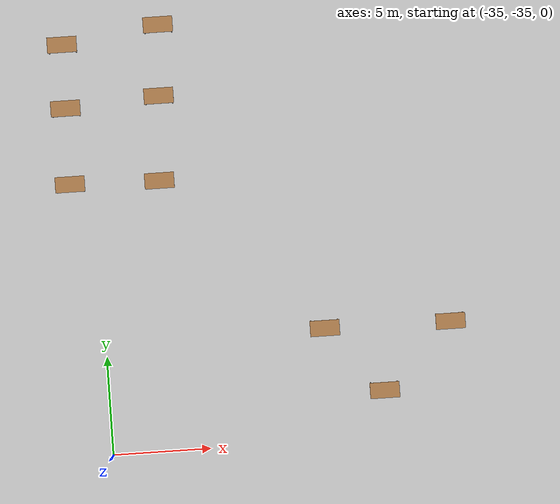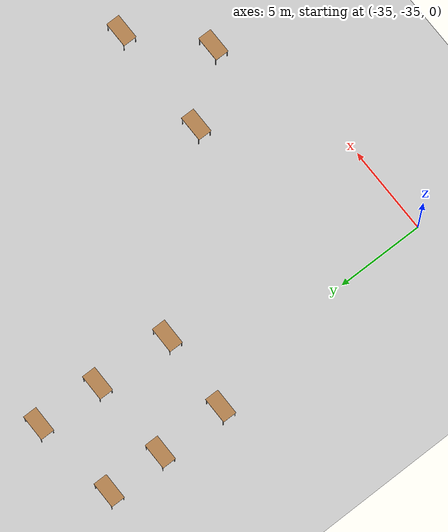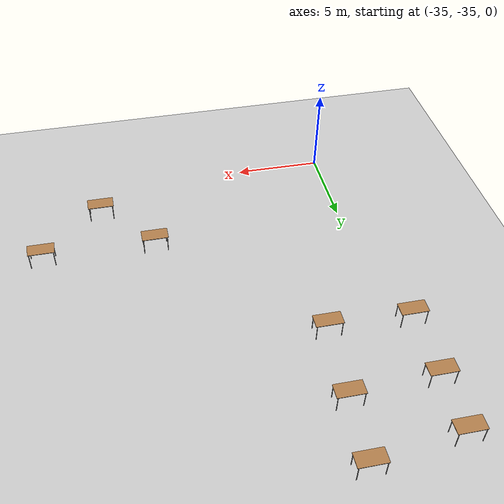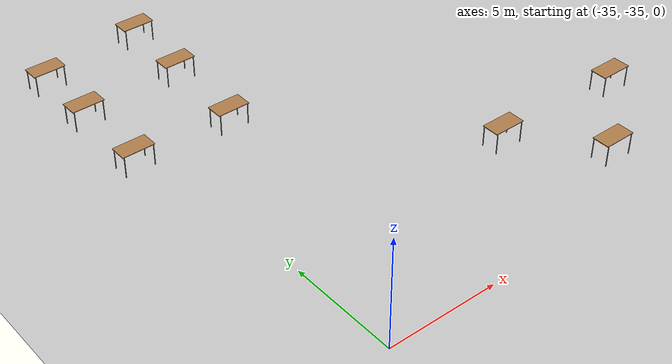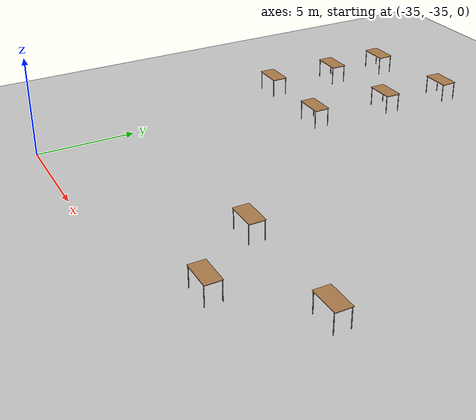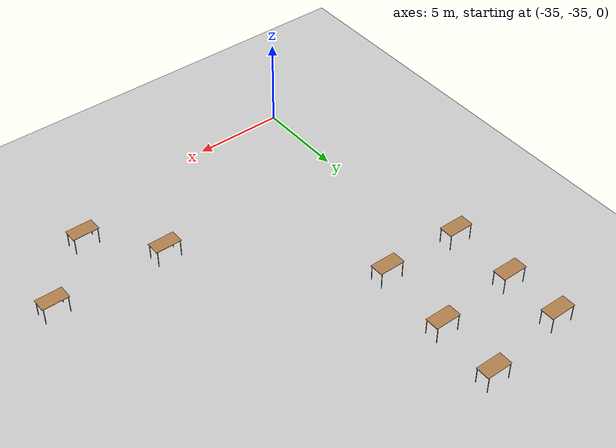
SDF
<sdf version="1.6">
 <world name="default">
  <model name="ground_plane">
   <static>1</static>
   <link name="link">
    <collision name="collision">
     <geometry><plane><normal>0 0 1</normal><size>100 100</size></plane></geometry>
     <surface>
      <contact><collide_bitmask>65535</collide_bitmask></contact>
      <friction><ode><mu>100</mu><mu2>50</mu2></ode></friction>
     </surface>
    </collision>
    <visual name="visual">
     <cast_shadows>0</cast_shadows>
     <geometry><plane><normal>0 0 1</normal><size>100 100</size></plane></geometry>
     <material>
      <script><uri>file://media/materials/scripts/gazebo.material</uri><name>Gazebo/Grey</name></script>
     </material>
    </visual>
   </link>
  </model>
  <model name="table">
   <static>1</static>
   <link name="link">
    <collision name="surface">
     <pose>0 0 1 0 -0 0</pose>
     <geometry><box><size>1.5 0.8 0.03</size></box></geometry>
     <surface><friction><ode><mu>0.6</mu><mu2>0.6</mu2></ode></friction></surface>
    </collision>
    <visual name="visual1">
     <pose>0 0 1 0 -0 0</pose>
     <geometry><box><size>1.5 0.8 0.03</size></box></geometry>
     <material>
      <script><uri>file://media/materials/scripts/gazebo.material</uri><name>Gazebo/Wood</name></script>
     </material>
    </visual>
    <collision name="front_left_leg">
     <pose>0.68 0.38 0.5 0 -0 0</pose>
     <geometry><cylinder><radius>0.02</radius><length>1</length></cylinder></geometry>
    </collision>
    <visual name="front_left_leg">
     <pose>0.68 0.38 0.5 0 -0 0</pose>
     <geometry><cylinder><radius>0.02</radius><length>1</length></cylinder></geometry>
     <material>
      <script><uri>file://media/materials/scripts/gazebo.material</uri><name>Gazebo/Grey</name></script>
     </material>
    </visual>
    <collision name="front_right_leg">
     <pose>0.68 -0.38 0.5 0 -0 0</pose>
     <geometry><cylinder><radius>0.02</radius><length>1</length></cylinder></geometry>
    </collision>
    <visual name="front_right_leg">
     <pose>0.68 -0.38 0.5 0 -0 0</pose>
     <geometry><cylinder><radius>0.02</radius><length>1</length></cylinder></geometry>
     <material>
      <script><uri>file://media/materials/scripts/gazebo.material</uri><name>Gazebo/Grey</name></script>
     </material>
    </visual>
    <collision name="back_right_leg">
     <pose>-0.68 -0.38 0.5 0 -0 0</pose>
     <geometry><cylinder><radius>0.02</radius><length>1</length></cylinder></geometry>
    </collision>
    <visual name="back_right_leg">
     <pose>-0.68 -0.38 0.5 0 -0 0</pose>
     <geometry><cylinder><radius>0.02</radius><length>1</length></cylinder></geometry>
     <material>
      <script><uri>file://media/materials/scripts/gazebo.material</uri><name>Gazebo/Grey</name></script>
     </material>
    </visual>
    <collision name="back_left_leg">
     <pose>-0.68 0.38 0.5 0 -0 0</pose>
     <geometry><cylinder><radius>0.02</radius><length>1</length></cylinder></geometry>
    </collision>
    <visual name="back_left_leg">
     <pose>-0.68 0.38 0.5 0 -0 0</pose>
     <geometry><cylinder><radius>0.02</radius><length>1</length></cylinder></geometry>
     <material>
      <script><uri>file://media/materials/scripts/gazebo.material</uri><name>Gazebo/Grey</name></script>
     </material>
    </visual>
   </link>
   <pose>-36.1983 -13.9942 0 0 -0 0</pose>
  </model>
  <model name="table_0">
   <static>1</static>
   <link name="link">
    <collision name="surface">
     <pose>0 0 1 0 -0 0</pose>
     <geometry><box><size>1.5 0.8 0.03</size></box></geometry>
     <surface><friction><ode><mu>0.6</mu><mu2>0.6</mu2></ode></friction></surface>
    </collision>
    <visual name="visual1">
     <pose>0 0 1 0 -0 0</pose>
     <geometry><box><size>1.5 0.8 0.03</size></box></geometry>
     <material>
      <script><uri>file://media/materials/scripts/gazebo.material</uri><name>Gazebo/Wood</name></script>
     </material>
    </visual>
    <collision name="front_left_leg">
     <pose>0.68 0.38 0.5 0 -0 0</pose>
     <geometry><cylinder><radius>0.02</radius><length>1</length></cylinder></geometry>
    </collision>
    <visual name="front_left_leg">
     <pose>0.68 0.38 0.5 0 -0 0</pose>
     <geometry><cylinder><radius>0.02</radius><length>1</length></cylinder></geometry>
     <material>
      <script><uri>file://media/materials/scripts/gazebo.material</uri><name>Gazebo/Grey</name></script>
     </material>
    </visual>
    <collision name="front_right_leg">
     <pose>0.68 -0.38 0.5 0 -0 0</pose>
     <geometry><cylinder><radius>0.02</radius><length>1</length></cylinder></geometry>
    </collision>
    <visual name="front_right_leg">
     <pose>0.68 -0.38 0.5 0 -0 0</pose>
     <geometry><cylinder><radius>0.02</radius><length>1</length></cylinder></geometry>
     <material>
      <script><uri>file://media/materials/scripts/gazebo.material</uri><name>Gazebo/Grey</name></script>
     </material>
    </visual>
    <collision name="back_right_leg">
     <pose>-0.68 -0.38 0.5 0 -0 0</pose>
     <geometry><cylinder><radius>0.02</radius><length>1</length></cylinder></geometry>
    </collision>
    <visual name="back_right_leg">
     <pose>-0.68 -0.38 0.5 0 -0 0</pose>
     <geometry><cylinder><radius>0.02</radius><length>1</length></cylinder></geometry>
     <material>
      <script><uri>file://media/materials/scripts/gazebo.material</uri><name>Gazebo/Grey</name></script>
     </material>
    </visual>
    <collision name="back_left_leg">
     <pose>-0.68 0.38 0.5 0 -0 0</pose>
     <geometry><cylinder><radius>0.02</radius><length>1</length></cylinder></geometry>
    </collision>
    <visual name="back_left_leg">
     <pose>-0.68 0.38 0.5 0 -0 0</pose>
     <geometry><cylinder><radius>0.02</radius><length>1</length></cylinder></geometry>
     <material>
      <script><uri>file://media/materials/scripts/gazebo.material</uri><name>Gazebo/Grey</name></script>
     </material>
    </visual>
   </link>
   <pose>-31.2788 -13.2929 0 0 -0 0</pose>
  </model>
  <model name="table_1">
   <static>1</static>
   <link name="link">
    <collision name="surface">
     <pose>0 0 1 0 -0 0</pose>
     <geometry><box><size>1.5 0.8 0.03</size></box></geometry>
     <surface><friction><ode><mu>0.6</mu><mu2>0.6</mu2></ode></friction></surface>
    </collision>
    <visual name="visual1">
     <pose>0 0 1 0 -0 0</pose>
     <geometry><box><size>1.5 0.8 0.03</size></box></geometry>
     <material>
      <script><uri>file://media/materials/scripts/gazebo.material</uri><name>Gazebo/Wood</name></script>
     </material>
    </visual>
    <collision name="front_left_leg">
     <pose>0.68 0.38 0.5 0 -0 0</pose>
     <geometry><cylinder><radius>0.02</radius><length>1</length></cylinder></geometry>
    </collision>
    <visual name="front_left_leg">
     <pose>0.68 0.38 0.5 0 -0 0</pose>
     <geometry><cylinder><radius>0.02</radius><length>1</length></cylinder></geometry>
     <material>
      <script><uri>file://media/materials/scripts/gazebo.material</uri><name>Gazebo/Grey</name></script>
     </material>
    </visual>
    <collision name="front_right_leg">
     <pose>0.68 -0.38 0.5 0 -0 0</pose>
     <geometry><cylinder><radius>0.02</radius><length>1</length></cylinder></geometry>
    </collision>
    <visual name="front_right_leg">
     <pose>0.68 -0.38 0.5 0 -0 0</pose>
     <geometry><cylinder><radius>0.02</radius><length>1</length></cylinder></geometry>
     <material>
      <script><uri>file://media/materials/scripts/gazebo.material</uri><name>Gazebo/Grey</name></script>
     </material>
    </visual>
    <collision name="back_right_leg">
     <pose>-0.68 -0.38 0.5 0 -0 0</pose>
     <geometry><cylinder><radius>0.02</radius><length>1</length></cylinder></geometry>
    </collision>
    <visual name="back_right_leg">
     <pose>-0.68 -0.38 0.5 0 -0 0</pose>
     <geometry><cylinder><radius>0.02</radius><length>1</length></cylinder></geometry>
     <material>
      <script><uri>file://media/materials/scripts/gazebo.material</uri><name>Gazebo/Grey</name></script>
     </material>
    </visual>
    <collision name="back_left_leg">
     <pose>-0.68 0.38 0.5 0 -0 0</pose>
     <geometry><cylinder><radius>0.02</radius><length>1</length></cylinder></geometry>
    </collision>
    <visual name="back_left_leg">
     <pose>-0.68 0.38 0.5 0 -0 0</pose>
     <geometry><cylinder><radius>0.02</radius><length>1</length></cylinder></geometry>
     <material>
      <script><uri>file://media/materials/scripts/gazebo.material</uri><name>Gazebo/Grey</name></script>
     </material>
    </visual>
   </link>
   <pose>-36.2301 -17.2331 0 0 -0 0</pose>
  </model>
  <model name="table_2">
   <static>1</static>
   <link name="link">
    <collision name="surface">
     <pose>0 0 1 0 -0 0</pose>
     <geometry><box><size>1.5 0.8 0.03</size></box></geometry>
     <surface><friction><ode><mu>0.6</mu><mu2>0.6</mu2></ode></friction></surface>
    </collision>
    <visual name="visual1">
     <pose>0 0 1 0 -0 0</pose>
     <geometry><box><size>1.5 0.8 0.03</size></box></geometry>
     <material>
      <script><uri>file://media/materials/scripts/gazebo.material</uri><name>Gazebo/Wood</name></script>
     </material>
    </visual>
    <collision name="front_left_leg">
     <pose>0.68 0.38 0.5 0 -0 0</pose>
     <geometry><cylinder><radius>0.02</radius><length>1</length></cylinder></geometry>
    </collision>
    <visual name="front_left_leg">
     <pose>0.68 0.38 0.5 0 -0 0</pose>
     <geometry><cylinder><radius>0.02</radius><length>1</length></cylinder></geometry>
     <material>
      <script><uri>file://media/materials/scripts/gazebo.material</uri><name>Gazebo/Grey</name></script>
     </material>
    </visual>
    <collision name="front_right_leg">
     <pose>0.68 -0.38 0.5 0 -0 0</pose>
     <geometry><cylinder><radius>0.02</radius><length>1</length></cylinder></geometry>
    </collision>
    <visual name="front_right_leg">
     <pose>0.68 -0.38 0.5 0 -0 0</pose>
     <geometry><cylinder><radius>0.02</radius><length>1</length></cylinder></geometry>
     <material>
      <script><uri>file://media/materials/scripts/gazebo.material</uri><name>Gazebo/Grey</name></script>
     </material>
    </visual>
    <collision name="back_right_leg">
     <pose>-0.68 -0.38 0.5 0 -0 0</pose>
     <geometry><cylinder><radius>0.02</radius><length>1</length></cylinder></geometry>
    </collision>
    <visual name="back_right_leg">
     <pose>-0.68 -0.38 0.5 0 -0 0</pose>
     <geometry><cylinder><radius>0.02</radius><length>1</length></cylinder></geometry>
     <material>
      <script><uri>file://media/materials/scripts/gazebo.material</uri><name>Gazebo/Grey</name></script>
     </material>
    </visual>
    <collision name="back_left_leg">
     <pose>-0.68 0.38 0.5 0 -0 0</pose>
     <geometry><cylinder><radius>0.02</radius><length>1</length></cylinder></geometry>
    </collision>
    <visual name="back_left_leg">
     <pose>-0.68 0.38 0.5 0 -0 0</pose>
     <geometry><cylinder><radius>0.02</radius><length>1</length></cylinder></geometry>
     <material>
      <script><uri>file://media/materials/scripts/gazebo.material</uri><name>Gazebo/Grey</name></script>
     </material>
    </visual>
   </link>
   <pose>-31.4735 -16.9015 0 0 -0 0</pose>
  </model>
  <model name="table_3">
   <static>1</static>
   <link name="link">
    <collision name="surface">
     <pose>0 0 1 0 -0 0</pose>
     <geometry><box><size>1.5 0.8 0.03</size></box></geometry>
     <surface><friction><ode><mu>0.6</mu><mu2>0.6</mu2></ode></friction></surface>
    </collision>
    <visual name="visual1">
     <pose>0 0 1 0 -0 0</pose>
     <geometry><box><size>1.5 0.8 0.03</size></box></geometry>
     <material>
      <script><uri>file://media/materials/scripts/gazebo.material</uri><name>Gazebo/Wood</name></script>
     </material>
    </visual>
    <collision name="front_left_leg">
     <pose>0.68 0.38 0.5 0 -0 0</pose>
     <geometry><cylinder><radius>0.02</radius><length>1</length></cylinder></geometry>
    </collision>
    <visual name="front_left_leg">
     <pose>0.68 0.38 0.5 0 -0 0</pose>
     <geometry><cylinder><radius>0.02</radius><length>1</length></cylinder></geometry>
     <material>
      <script><uri>file://media/materials/scripts/gazebo.material</uri><name>Gazebo/Grey</name></script>
     </material>
    </visual>
    <collision name="front_right_leg">
     <pose>0.68 -0.38 0.5 0 -0 0</pose>
     <geometry><cylinder><radius>0.02</radius><length>1</length></cylinder></geometry>
    </collision>
    <visual name="front_right_leg">
     <pose>0.68 -0.38 0.5 0 -0 0</pose>
     <geometry><cylinder><radius>0.02</radius><length>1</length></cylinder></geometry>
     <material>
      <script><uri>file://media/materials/scripts/gazebo.material</uri><name>Gazebo/Grey</name></script>
     </material>
    </visual>
    <collision name="back_right_leg">
     <pose>-0.68 -0.38 0.5 0 -0 0</pose>
     <geometry><cylinder><radius>0.02</radius><length>1</length></cylinder></geometry>
    </collision>
    <visual name="back_right_leg">
     <pose>-0.68 -0.38 0.5 0 -0 0</pose>
     <geometry><cylinder><radius>0.02</radius><length>1</length></cylinder></geometry>
     <material>
      <script><uri>file://media/materials/scripts/gazebo.material</uri><name>Gazebo/Grey</name></script>
     </material>
    </visual>
    <collision name="back_left_leg">
     <pose>-0.68 0.38 0.5 0 -0 0</pose>
     <geometry><cylinder><radius>0.02</radius><length>1</length></cylinder></geometry>
    </collision>
    <visual name="back_left_leg">
     <pose>-0.68 0.38 0.5 0 -0 0</pose>
     <geometry><cylinder><radius>0.02</radius><length>1</length></cylinder></geometry>
     <material>
      <script><uri>file://media/materials/scripts/gazebo.material</uri><name>Gazebo/Grey</name></script>
     </material>
    </visual>
   </link>
   <pose>-36.257 -21.0926 0 0 -0 0</pose>
  </model>
  <model name="table_4">
   <static>1</static>
   <link name="link">
    <collision name="surface">
     <pose>0 0 1 0 -0 0</pose>
     <geometry><box><size>1.5 0.8 0.03</size></box></geometry>
     <surface><friction><ode><mu>0.6</mu><mu2>0.6</mu2></ode></friction></surface>
    </collision>
    <visual name="visual1">
     <pose>0 0 1 0 -0 0</pose>
     <geometry><box><size>1.5 0.8 0.03</size></box></geometry>
     <material>
      <script><uri>file://media/materials/scripts/gazebo.material</uri><name>Gazebo/Wood</name></script>
     </material>
    </visual>
    <collision name="front_left_leg">
     <pose>0.68 0.38 0.5 0 -0 0</pose>
     <geometry><cylinder><radius>0.02</radius><length>1</length></cylinder></geometry>
    </collision>
    <visual name="front_left_leg">
     <pose>0.68 0.38 0.5 0 -0 0</pose>
     <geometry><cylinder><radius>0.02</radius><length>1</length></cylinder></geometry>
     <material>
      <script><uri>file://media/materials/scripts/gazebo.material</uri><name>Gazebo/Grey</name></script>
     </material>
    </visual>
    <collision name="front_right_leg">
     <pose>0.68 -0.38 0.5 0 -0 0</pose>
     <geometry><cylinder><radius>0.02</radius><length>1</length></cylinder></geometry>
    </collision>
    <visual name="front_right_leg">
     <pose>0.68 -0.38 0.5 0 -0 0</pose>
     <geometry><cylinder><radius>0.02</radius><length>1</length></cylinder></geometry>
     <material>
      <script><uri>file://media/materials/scripts/gazebo.material</uri><name>Gazebo/Grey</name></script>
     </material>
    </visual>
    <collision name="back_right_leg">
     <pose>-0.68 -0.38 0.5 0 -0 0</pose>
     <geometry><cylinder><radius>0.02</radius><length>1</length></cylinder></geometry>
    </collision>
    <visual name="back_right_leg">
     <pose>-0.68 -0.38 0.5 0 -0 0</pose>
     <geometry><cylinder><radius>0.02</radius><length>1</length></cylinder></geometry>
     <material>
      <script><uri>file://media/materials/scripts/gazebo.material</uri><name>Gazebo/Grey</name></script>
     </material>
    </visual>
    <collision name="back_left_leg">
     <pose>-0.68 0.38 0.5 0 -0 0</pose>
     <geometry><cylinder><radius>0.02</radius><length>1</length></cylinder></geometry>
    </collision>
    <visual name="back_left_leg">
     <pose>-0.68 0.38 0.5 0 -0 0</pose>
     <geometry><cylinder><radius>0.02</radius><length>1</length></cylinder></geometry>
     <material>
      <script><uri>file://media/materials/scripts/gazebo.material</uri><name>Gazebo/Grey</name></script>
     </material>
    </visual>
   </link>
   <pose>-31.72 -21.1991 0 0 -0 0</pose>
  </model>
  <model name="table_5">
   <static>1</static>
   <link name="link">
    <collision name="surface">
     <pose>0 0 1 0 -0 0</pose>
     <geometry><box><size>1.5 0.8 0.03</size></box></geometry>
     <surface><friction><ode><mu>0.6</mu><mu2>0.6</mu2></ode></friction></surface>
    </collision>
    <visual name="visual1">
     <pose>0 0 1 0 -0 0</pose>
     <geometry><box><size>1.5 0.8 0.03</size></box></geometry>
     <material>
      <script><uri>file://media/materials/scripts/gazebo.material</uri><name>Gazebo/Wood</name></script>
     </material>
    </visual>
    <collision name="front_left_leg">
     <pose>0.68 0.38 0.5 0 -0 0</pose>
     <geometry><cylinder><radius>0.02</radius><length>1</length></cylinder></geometry>
    </collision>
    <visual name="front_left_leg">
     <pose>0.68 0.38 0.5 0 -0 0</pose>
     <geometry><cylinder><radius>0.02</radius><length>1</length></cylinder></geometry>
     <material>
      <script><uri>file://media/materials/scripts/gazebo.material</uri><name>Gazebo/Grey</name></script>
     </material>
    </visual>
    <collision name="front_right_leg">
     <pose>0.68 -0.38 0.5 0 -0 0</pose>
     <geometry><cylinder><radius>0.02</radius><length>1</length></cylinder></geometry>
    </collision>
    <visual name="front_right_leg">
     <pose>0.68 -0.38 0.5 0 -0 0</pose>
     <geometry><cylinder><radius>0.02</radius><length>1</length></cylinder></geometry>
     <material>
      <script><uri>file://media/materials/scripts/gazebo.material</uri><name>Gazebo/Grey</name></script>
     </material>
    </visual>
    <collision name="back_right_leg">
     <pose>-0.68 -0.38 0.5 0 -0 0</pose>
     <geometry><cylinder><radius>0.02</radius><length>1</length></cylinder></geometry>
    </collision>
    <visual name="back_right_leg">
     <pose>-0.68 -0.38 0.5 0 -0 0</pose>
     <geometry><cylinder><radius>0.02</radius><length>1</length></cylinder></geometry>
     <material>
      <script><uri>file://media/materials/scripts/gazebo.material</uri><name>Gazebo/Grey</name></script>
     </material>
    </visual>
    <collision name="back_left_leg">
     <pose>-0.68 0.38 0.5 0 -0 0</pose>
     <geometry><cylinder><radius>0.02</radius><length>1</length></cylinder></geometry>
    </collision>
    <visual name="back_left_leg">
     <pose>-0.68 0.38 0.5 0 -0 0</pose>
     <geometry><cylinder><radius>0.02</radius><length>1</length></cylinder></geometry>
     <material>
      <script><uri>file://media/materials/scripts/gazebo.material</uri><name>Gazebo/Grey</name></script>
     </material>
    </visual>
   </link>
   <pose>-23.8419 -29.2289 0 0 -0 0</pose>
  </model>
  <model name="table_6">
   <static>1</static>
   <link name="link">
    <collision name="surface">
     <pose>0 0 1 0 -0 0</pose>
     <geometry><box><size>1.5 0.8 0.03</size></box></geometry>
     <surface><friction><ode><mu>0.6</mu><mu2>0.6</mu2></ode></friction></surface>
    </collision>
    <visual name="visual1">
     <pose>0 0 1 0 -0 0</pose>
     <geometry><box><size>1.5 0.8 0.03</size></box></geometry>
     <material>
      <script><uri>file://media/materials/scripts/gazebo.material</uri><name>Gazebo/Wood</name></script>
     </material>
    </visual>
    <collision name="front_left_leg">
     <pose>0.68 0.38 0.5 0 -0 0</pose>
     <geometry><cylinder><radius>0.02</radius><length>1</length></cylinder></geometry>
    </collision>
    <visual name="front_left_leg">
     <pose>0.68 0.38 0.5 0 -0 0</pose>
     <geometry><cylinder><radius>0.02</radius><length>1</length></cylinder></geometry>
     <material>
      <script><uri>file://media/materials/scripts/gazebo.material</uri><name>Gazebo/Grey</name></script>
     </material>
    </visual>
    <collision name="front_right_leg">
     <pose>0.68 -0.38 0.5 0 -0 0</pose>
     <geometry><cylinder><radius>0.02</radius><length>1</length></cylinder></geometry>
    </collision>
    <visual name="front_right_leg">
     <pose>0.68 -0.38 0.5 0 -0 0</pose>
     <geometry><cylinder><radius>0.02</radius><length>1</length></cylinder></geometry>
     <material>
      <script><uri>file://media/materials/scripts/gazebo.material</uri><name>Gazebo/Grey</name></script>
     </material>
    </visual>
    <collision name="back_right_leg">
     <pose>-0.68 -0.38 0.5 0 -0 0</pose>
     <geometry><cylinder><radius>0.02</radius><length>1</length></cylinder></geometry>
    </collision>
    <visual name="back_right_leg">
     <pose>-0.68 -0.38 0.5 0 -0 0</pose>
     <geometry><cylinder><radius>0.02</radius><length>1</length></cylinder></geometry>
     <material>
      <script><uri>file://media/materials/scripts/gazebo.material</uri><name>Gazebo/Grey</name></script>
     </material>
    </visual>
    <collision name="back_left_leg">
     <pose>-0.68 0.38 0.5 0 -0 0</pose>
     <geometry><cylinder><radius>0.02</radius><length>1</length></cylinder></geometry>
    </collision>
    <visual name="back_left_leg">
     <pose>-0.68 0.38 0.5 0 -0 0</pose>
     <geometry><cylinder><radius>0.02</radius><length>1</length></cylinder></geometry>
     <material>
      <script><uri>file://media/materials/scripts/gazebo.material</uri><name>Gazebo/Grey</name></script>
     </material>
    </visual>
   </link>
   <pose>-17.4557 -29.2876 0 0 -0 0</pose>
  </model>
  <model name="table_7">
   <static>1</static>
   <link name="link">
    <collision name="surface">
     <pose>0 0 1 0 -0 0</pose>
     <geometry><box><size>1.5 0.8 0.03</size></box></geometry>
     <surface><friction><ode><mu>0.6</mu><mu2>0.6</mu2></ode></friction></surface>
    </collision>
    <visual name="visual1">
     <pose>0 0 1 0 -0 0</pose>
     <geometry><box><size>1.5 0.8 0.03</size></box></geometry>
     <material>
      <script><uri>file://media/materials/scripts/gazebo.material</uri><name>Gazebo/Wood</name></script>
     </material>
    </visual>
    <collision name="front_left_leg">
     <pose>0.68 0.38 0.5 0 -0 0</pose>
     <geometry><cylinder><radius>0.02</radius><length>1</length></cylinder></geometry>
    </collision>
    <visual name="front_left_leg">
     <pose>0.68 0.38 0.5 0 -0 0</pose>
     <geometry><cylinder><radius>0.02</radius><length>1</length></cylinder></geometry>
     <material>
      <script><uri>file://media/materials/scripts/gazebo.material</uri><name>Gazebo/Grey</name></script>
     </material>
    </visual>
    <collision name="front_right_leg">
     <pose>0.68 -0.38 0.5 0 -0 0</pose>
     <geometry><cylinder><radius>0.02</radius><length>1</length></cylinder></geometry>
    </collision>
    <visual name="front_right_leg">
     <pose>0.68 -0.38 0.5 0 -0 0</pose>
     <geometry><cylinder><radius>0.02</radius><length>1</length></cylinder></geometry>
     <material>
      <script><uri>file://media/materials/scripts/gazebo.material</uri><name>Gazebo/Grey</name></script>
     </material>
    </visual>
    <collision name="back_right_leg">
     <pose>-0.68 -0.38 0.5 0 -0 0</pose>
     <geometry><cylinder><radius>0.02</radius><length>1</length></cylinder></geometry>
    </collision>
    <visual name="back_right_leg">
     <pose>-0.68 -0.38 0.5 0 -0 0</pose>
     <geometry><cylinder><radius>0.02</radius><length>1</length></cylinder></geometry>
     <material>
      <script><uri>file://media/materials/scripts/gazebo.material</uri><name>Gazebo/Grey</name></script>
     </material>
    </visual>
    <collision name="back_left_leg">
     <pose>-0.68 0.38 0.5 0 -0 0</pose>
     <geometry><cylinder><radius>0.02</radius><length>1</length></cylinder></geometry>
    </collision>
    <visual name="back_left_leg">
     <pose>-0.68 0.38 0.5 0 -0 0</pose>
     <geometry><cylinder><radius>0.02</radius><length>1</length></cylinder></geometry>
     <material>
      <script><uri>file://media/materials/scripts/gazebo.material</uri><name>Gazebo/Grey</name></script>
     </material>
    </visual>
   </link>
   <pose>-21.0125 -32.5668 0 0 -0 0</pose>
  </model>
 </world>
</sdf>
